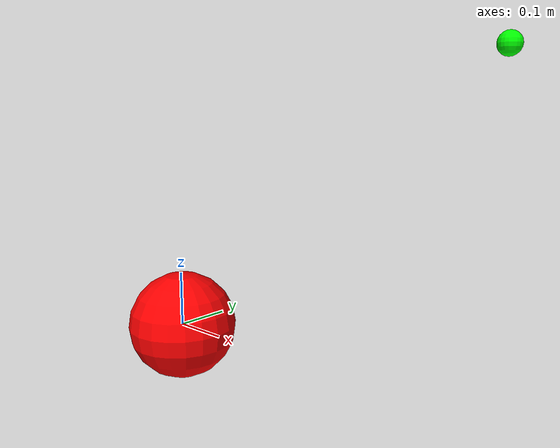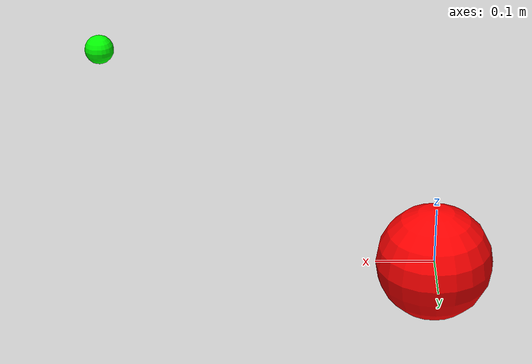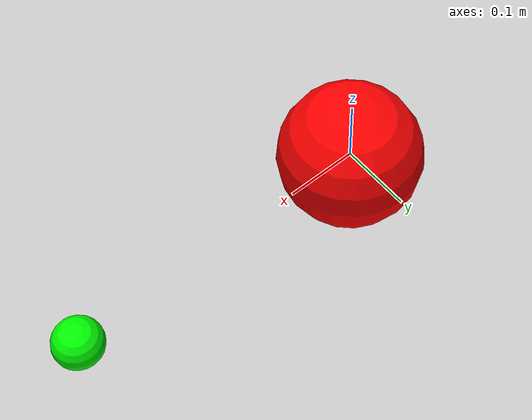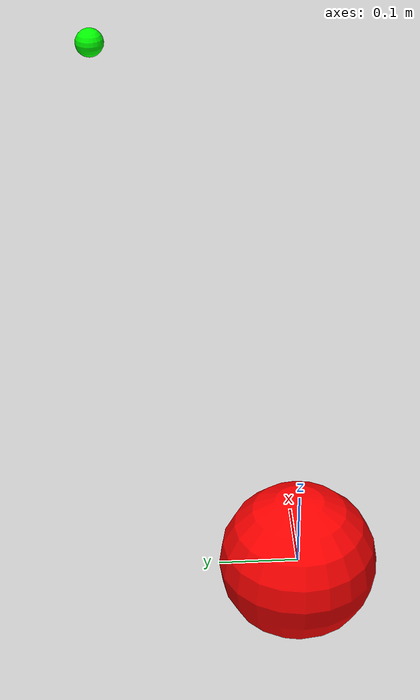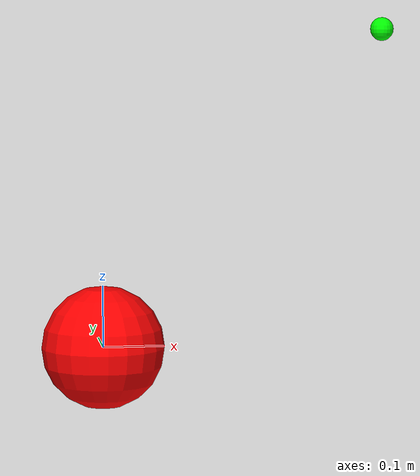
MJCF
<mujoco model="point_mass">
  <option timestep="0.01" />

  <asset>
    <texture name="grid" type="2d" builtin="checker" rgb1=".1 .2 .3"
     rgb2=".2 .3 .4" width="300" height="300"/>
    <material name="grid" texture="grid" texrepeat="8 8" reflectance="0"/>
  </asset>

  <worldbody>
    <body name="point_mass" pos="0 0 0">
      <joint name="joint_1" type="slide" axis="1 0 0"/>
      <joint name="joint_2" type="slide" axis="0 1 0"/>
      <joint name="joint_3" type="slide" axis="0 0 1"/>
      <geom type="sphere" size="0.1" mass="0.1" rgba="255.0 0.0 0.0 1.0"/>
    </body>
    <site name="goal_marker" pos="0.5 0.25 0.5" size="0.02" type="sphere" rgba="0 1 0 1"/>
    <site name="traj_site_0" pos="0 0 0" size="0.02" rgba="255 240 0 1"/>
    <site name="traj_site_1" pos="0 0 0" size="0.02" rgba="255 240 0 1"/>
    <site name="traj_site_2" pos="0 0 0" size="0.02" rgba="255 240 0 1"/>
    <site name="traj_site_3" pos="0 0 0" size="0.02" rgba="255 240 0 1"/>
    <site name="traj_site_4" pos="0 0 0" size="0.02" rgba="255 240 0 1"/>
    <site name="traj_site_5" pos="0 0 0" size="0.02" rgba="255 240 0 1"/>
    <site name="traj_site_6" pos="0 0 0" size="0.02" rgba="255 240 0 1"/>
    <site name="traj_site_7" pos="0 0 0" size="0.02" rgba="255 240 0 1"/>
    <site name="traj_site_8" pos="0 0 0" size="0.02" rgba="255 240 0 1"/>
    <site name="traj_site_9" pos="0 0 0" size="0.02" rgba="255 240 0 1"/>
  </worldbody>

  <actuator>
    <motor joint="joint_1" ctrlrange="-10 10" ctrllimited="true"/>
    <motor joint="joint_2" ctrlrange="-10 10" ctrllimited="true"/>
    <motor joint="joint_3" ctrlrange="-10 10" ctrllimited="true"/>
  </actuator>
</mujoco>
